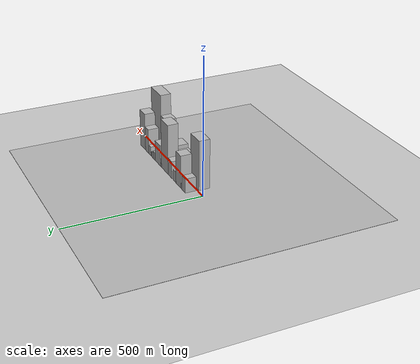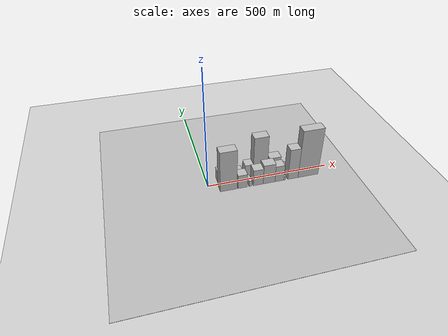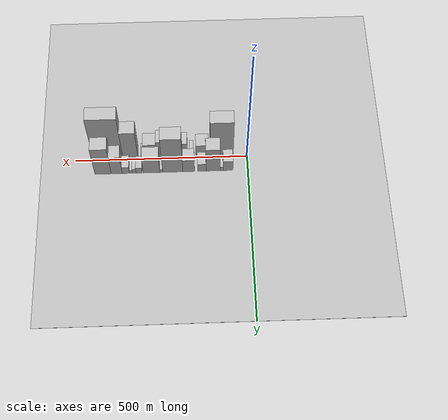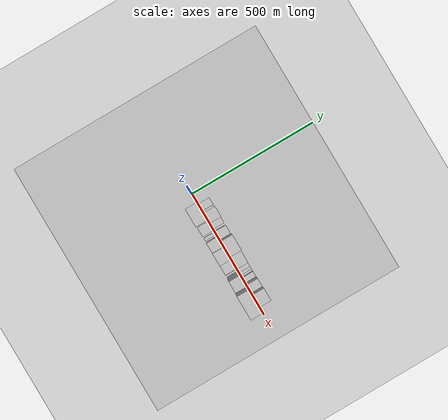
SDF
<?xml version="1.0" encoding="utf-8"?>

<sdf version="1.6">

   <world name="default">

      <gui fullscreen="0">

         <camera name="user_camera">

            <pose>-15 0 4.57585 0 0 0</pose>

            <view_controller>orbit</view_controller>

         </camera>

      </gui>

      <scene>

         <sky>

           <clouds>

             <speed>12</speed>

           </clouds>

         </sky>

         <ambient>0.4 0.4 0.4 1</ambient>

         <background>0.7 0.7 0.7 1</background>

         <shadows>1</shadows>

      </scene>

      <gravity>0 0 -9.8066</gravity>

      <magnetic_field>6e-06 2.3e-05 -4.2e-05</magnetic_field>

      <physics default="0" name="default_physics" type="ode">

         <ode>

            <solver>

               <type>quick</type>

               <iters>10</iters>

               <sor>1.0</sor>

               <use_dynamic_moi_rescaling>0</use_dynamic_moi_rescaling>

            </solver>

            <constraints>

               <cfm>0</cfm>

               <erp>0.2</erp>

               <contact_max_correcting_vel>100</contact_max_correcting_vel>

               <contact_surface_layer>0.001</contact_surface_layer>

            </constraints>

         </ode>

         <max_step_size>0.004</max_step_size>

         <real_time_factor>1</real_time_factor>

         <real_time_update_rate>250</real_time_update_rate>

      </physics>

      <light name="sun" type="directional">

         <cast_shadows>1</cast_shadows>

         <pose>0 0 10 0 0 0</pose>

         <diffuse>0.8 0.8 0.8 1</diffuse>

         <specular>0.2 0.2 0.2 1</specular>

         <attenuation>

            <range>1000</range>

            <constant>0.9</constant>

            <linear>0.01</linear>

            <quadratic>0.001</quadratic>

         </attenuation>

         <direction>-0.5 0.1 -0.9</direction>

      </light>

      <include>

         <name>ground_plane_1</name>

         <uri>model://HANNAS_ground_plane</uri>

         <pose>0 0 0  0 0 0</pose>

      </include>

      <include>

         <name>ground_plane_2</name>

         <uri>model://HANNAS_ground_plane</uri>

         <pose>100 0 0  0 0 0</pose>

      </include>

      <model name="building_1">

         <static>1</static>

         <pose frame="">57.1358 24.5000 0 0.000000 0.000000 1.570796</pose>

         <link name="link">

            <pose frame="">0 0 27.00 0 0 0</pose>

            <collision name="collision">

               <geometry>

                  <box>

                     <size>40.0000 28.2716 54.0000</size>

                  </box>

               </geometry>

               <max_contacts>10</max_contacts>

               <surface>

                  <contact>

                     <ode/>

                  </contact>

                  <bounce/>

                  <friction>

                     <torsional>

                        <ode/>

                     </torsional>

                     <ode/>

                  </friction>

               </surface>

            </collision>

            <visual name="visual">

               <cast_shadows>0</cast_shadows>

               <geometry>

                  <box>

                     <size>40.0000 28.2716 54.0000</size>

                  </box>

               </geometry>

               <material>

                  <script>

                     <uri>model://HANNAS_wall/materials/scripts</uri>

                     <uri>model://HANNAS_wall/materials/textures</uri>

                     <name>vrc/HANNAS_wall</name>

                  </script>

               </material>

            </visual>

            <self_collide>0</self_collide>

            <enable_wind>0</enable_wind>

            <kinematic>0</kinematic>

         </link>

      </model>

      <model name="building_2">

         <static>1</static>

         <pose frame="">75.6466 24.5000 0 0.000000 0.000000 1.570796</pose>

         <link name="link">

            <pose frame="">0 0 10.50 0 0 0</pose>

            <collision name="collision">

               <geometry>

                  <box>

                     <size>40.0000 8.7501 21.0000</size>

                  </box>

               </geometry>

               <max_contacts>10</max_contacts>

               <surface>

                  <contact>

                     <ode/>

                  </contact>

                  <bounce/>

                  <friction>

                     <torsional>

                        <ode/>

                     </torsional>

                     <ode/>

                  </friction>

               </surface>

            </collision>

            <visual name="visual">

               <cast_shadows>0</cast_shadows>

               <geometry>

                  <box>

                     <size>40.0000 8.7501 21.0000</size>

                  </box>

               </geometry>

               <material>

                  <script>

                     <uri>model://HANNAS_wall/materials/scripts</uri>

                     <uri>model://HANNAS_wall/materials/textures</uri>

                     <name>vrc/HANNAS_wall</name>

                  </script>

               </material>

            </visual>

            <self_collide>0</self_collide>

            <enable_wind>0</enable_wind>

            <kinematic>0</kinematic>

         </link>

      </model>

      <model name="building_3">

         <static>1</static>

         <pose frame="">100.4074 24.5000 0 0.000000 0.000000 1.570796</pose>

         <link name="link">

            <pose frame="">0 0 61.50 0 0 0</pose>

            <collision name="collision">

               <geometry>

                  <box>

                     <size>40.0000 40.7714 123.0000</size>

                  </box>

               </geometry>

               <max_contacts>10</max_contacts>

               <surface>

                  <contact>

                     <ode/>

                  </contact>

                  <bounce/>

                  <friction>

                     <torsional>

                        <ode/>

                     </torsional>

                     <ode/>

                  </friction>

               </surface>

            </collision>

            <visual name="visual">

               <cast_shadows>0</cast_shadows>

               <geometry>

                  <box>

                     <size>40.0000 40.7714 123.0000</size>

                  </box>

               </geometry>

               <material>

                  <script>

                     <uri>model://HANNAS_wall/materials/scripts</uri>

                     <uri>model://HANNAS_wall/materials/textures</uri>

                     <name>vrc/HANNAS_wall</name>

                  </script>

               </material>

            </visual>

            <self_collide>0</self_collide>

            <enable_wind>0</enable_wind>

            <kinematic>0</kinematic>

         </link>

      </model>

      <model name="building_4">

         <static>1</static>

         <pose frame="">133.0607 24.5000 0 0.000000 0.000000 1.570796</pose>

         <link name="link">

            <pose frame="">0 0 21.00 0 0 0</pose>

            <collision name="collision">

               <geometry>

                  <box>

                     <size>40.0000 24.5352 42.0000</size>

                  </box>

               </geometry>

               <max_contacts>10</max_contacts>

               <surface>

                  <contact>

                     <ode/>

                  </contact>

                  <bounce/>

                  <friction>

                     <torsional>

                        <ode/>

                     </torsional>

                     <ode/>

                  </friction>

               </surface>

            </collision>

            <visual name="visual">

               <cast_shadows>0</cast_shadows>

               <geometry>

                  <box>

                     <size>40.0000 24.5352 42.0000</size>

                  </box>

               </geometry>

               <material>

                  <script>

                     <uri>model://HANNAS_wall/materials/scripts</uri>

                     <uri>model://HANNAS_wall/materials/textures</uri>

                     <name>vrc/HANNAS_wall</name>

                  </script>

               </material>

            </visual>

            <self_collide>0</self_collide>

            <enable_wind>0</enable_wind>

            <kinematic>0</kinematic>

         </link>

      </model>

      <model name="building_5">

         <static>1</static>

         <pose frame="">171.2471 24.5000 0 0.000000 0.000000 1.570796</pose>

         <link name="link">

            <pose frame="">0 0 33.00 0 0 0</pose>

            <collision name="collision">

               <geometry>

                  <box>

                     <size>40.0000 33.8376 66.0000</size>

                  </box>

               </geometry>

               <max_contacts>10</max_contacts>

               <surface>

                  <contact>

                     <ode/>

                  </contact>

                  <bounce/>

                  <friction>

                     <torsional>

                        <ode/>

                     </torsional>

                     <ode/>

                  </friction>

               </surface>

            </collision>

            <visual name="visual">

               <cast_shadows>0</cast_shadows>

               <geometry>

                  <box>

                     <size>40.0000 33.8376 66.0000</size>

                  </box>

               </geometry>

               <material>

                  <script>

                     <uri>model://HANNAS_wall/materials/scripts</uri>

                     <uri>model://HANNAS_wall/materials/textures</uri>

                     <name>vrc/HANNAS_wall</name>

                  </script>

               </material>

            </visual>

            <self_collide>0</self_collide>

            <enable_wind>0</enable_wind>

            <kinematic>0</kinematic>

         </link>

      </model>

      <model name="building_6">

         <static>1</static>

         <pose frame="">217.4419 24.5000 0 0.000000 0.000000 1.570796</pose>

         <link name="link">

            <pose frame="">0 0 94.50 0 0 0</pose>

            <collision name="collision">

               <geometry>

                  <box>

                     <size>40.0000 58.5521 189.0000</size>

                  </box>

               </geometry>

               <max_contacts>10</max_contacts>

               <surface>

                  <contact>

                     <ode/>

                  </contact>

                  <bounce/>

                  <friction>

                     <torsional>

                        <ode/>

                     </torsional>

                     <ode/>

                  </friction>

               </surface>

            </collision>

            <visual name="visual">

               <cast_shadows>0</cast_shadows>

               <geometry>

                  <box>

                     <size>40.0000 58.5521 189.0000</size>

                  </box>

               </geometry>

               <material>

                  <script>

                     <uri>model://HANNAS_wall/materials/scripts</uri>

                     <uri>model://HANNAS_wall/materials/textures</uri>

                     <name>vrc/HANNAS_wall</name>

                  </script>

               </material>

            </visual>

            <self_collide>0</self_collide>

            <enable_wind>0</enable_wind>

            <kinematic>0</kinematic>

         </link>

      </model>

      <model name="building_7">

         <static>1</static>

         <pose frame="">250.9183 24.5000 0 0.000000 0.000000 1.570796</pose>

         <link name="link">

            <pose frame="">0 0 9.00 0 0 0</pose>

            <collision name="collision">

               <geometry>

                  <box>

                     <size>40.0000 8.4008 18.0000</size>

                  </box>

               </geometry>

               <max_contacts>10</max_contacts>

               <surface>

                  <contact>

                     <ode/>

                  </contact>

                  <bounce/>

                  <friction>

                     <torsional>

                        <ode/>

                     </torsional>

                     <ode/>

                  </friction>

               </surface>

            </collision>

            <visual name="visual">

               <cast_shadows>0</cast_shadows>

               <geometry>

                  <box>

                     <size>40.0000 8.4008 18.0000</size>

                  </box>

               </geometry>

               <material>

                  <script>

                     <uri>model://HANNAS_wall/materials/scripts</uri>

                     <uri>model://HANNAS_wall/materials/textures</uri>

                     <name>vrc/HANNAS_wall</name>

                  </script>

               </material>

            </visual>

            <self_collide>0</self_collide>

            <enable_wind>0</enable_wind>

            <kinematic>0</kinematic>

         </link>

      </model>

      <model name="building_8">

         <static>1</static>

         <pose frame="">279.1200 24.5000 0 0.000000 0.000000 1.570796</pose>

         <link name="link">

            <pose frame="">0 0 40.50 0 0 0</pose>

            <collision name="collision">

               <geometry>

                  <box>

                     <size>40.0000 48.0025 81.0000</size>

                  </box>

               </geometry>

               <max_contacts>10</max_contacts>

               <surface>

                  <contact>

                     <ode/>

                  </contact>

                  <bounce/>

                  <friction>

                     <torsional>

                        <ode/>

                     </torsional>

                     <ode/>

                  </friction>

               </surface>

            </collision>

            <visual name="visual">

               <cast_shadows>0</cast_shadows>

               <geometry>

                  <box>

                     <size>40.0000 48.0025 81.0000</size>

                  </box>

               </geometry>

               <material>

                  <script>

                     <uri>model://HANNAS_wall/materials/scripts</uri>

                     <uri>model://HANNAS_wall/materials/textures</uri>

                     <name>vrc/HANNAS_wall</name>

                  </script>

               </material>

            </visual>

            <self_collide>0</self_collide>

            <enable_wind>0</enable_wind>

            <kinematic>0</kinematic>

         </link>

      </model>

      <model name="building_9">

         <static>1</static>

         <pose frame="">314.8700 24.5000 0 0.000000 0.000000 1.570796</pose>

         <link name="link">

            <pose frame="">0 0 15.00 0 0 0</pose>

            <collision name="collision">

               <geometry>

                  <box>

                     <size>40.0000 17.4976 30.0000</size>

                  </box>

               </geometry>

               <max_contacts>10</max_contacts>

               <surface>

                  <contact>

                     <ode/>

                  </contact>

                  <bounce/>

                  <friction>

                     <torsional>

                        <ode/>

                     </torsional>

                     <ode/>

                  </friction>

               </surface>

            </collision>

            <visual name="visual">

               <cast_shadows>0</cast_shadows>

               <geometry>

                  <box>

                     <size>40.0000 17.4976 30.0000</size>

                  </box>

               </geometry>

               <material>

                  <script>

                     <uri>model://HANNAS_wall/materials/scripts</uri>

                     <uri>model://HANNAS_wall/materials/textures</uri>

                     <name>vrc/HANNAS_wall</name>

                  </script>

               </material>

            </visual>

            <self_collide>0</self_collide>

            <enable_wind>0</enable_wind>

            <kinematic>0</kinematic>

         </link>

      </model>

      <model name="building_10">

         <static>1</static>

         <pose frame="">329.1398 24.5000 0 0.000000 0.000000 1.570796</pose>

         <link name="link">

            <pose frame="">0 0 12.00 0 0 0</pose>

            <collision name="collision">

               <geometry>

                  <box>

                     <size>40.0000 11.0420 24.0000</size>

                  </box>

               </geometry>

               <max_contacts>10</max_contacts>

               <surface>

                  <contact>

                     <ode/>

                  </contact>

                  <bounce/>

                  <friction>

                     <torsional>

                        <ode/>

                     </torsional>

                     <ode/>

                  </friction>

               </surface>

            </collision>

            <visual name="visual">

               <cast_shadows>0</cast_shadows>

               <geometry>

                  <box>

                     <size>40.0000 11.0420 24.0000</size>

                  </box>

               </geometry>

               <material>

                  <script>

                     <uri>model://HANNAS_wall/materials/scripts</uri>

                     <uri>model://HANNAS_wall/materials/textures</uri>

                     <name>vrc/HANNAS_wall</name>

                  </script>

               </material>

            </visual>

            <self_collide>0</self_collide>

            <enable_wind>0</enable_wind>

            <kinematic>0</kinematic>

         </link>

      </model>

      <model name="building_11">

         <static>1</static>

         <pose frame="">338.8888 24.5000 0 0.000000 0.000000 1.570796</pose>

         <link name="link">

            <pose frame="">0 0 9.00 0 0 0</pose>

            <collision name="collision">

               <geometry>

                  <box>

                     <size>40.0000 8.4560 18.0000</size>

                  </box>

               </geometry>

               <max_contacts>10</max_contacts>

               <surface>

                  <contact>

                     <ode/>

                  </contact>

                  <bounce/>

                  <friction>

                     <torsional>

                        <ode/>

                     </torsional>

                     <ode/>

                  </friction>

               </surface>

            </collision>

            <visual name="visual">

               <cast_shadows>0</cast_shadows>

               <geometry>

                  <box>

                     <size>40.0000 8.4560 18.0000</size>

                  </box>

               </geometry>

               <material>

                  <script>

                     <uri>model://HANNAS_wall/materials/scripts</uri>

                     <uri>model://HANNAS_wall/materials/textures</uri>

                     <name>vrc/HANNAS_wall</name>

                  </script>

               </material>

            </visual>

            <self_collide>0</self_collide>

            <enable_wind>0</enable_wind>

            <kinematic>0</kinematic>

         </link>

      </model>

      <model name="building_12">

         <static>1</static>

         <pose frame="">353.6256 24.5000 0 0.000000 0.000000 1.570796</pose>

         <link name="link">

            <pose frame="">0 0 18.00 0 0 0</pose>

            <collision name="collision">

               <geometry>

                  <box>

                     <size>40.0000 21.0176 36.0000</size>

                  </box>

               </geometry>

               <max_contacts>10</max_contacts>

               <surface>

                  <contact>

                     <ode/>

                  </contact>

                  <bounce/>

                  <friction>

                     <torsional>

                        <ode/>

                     </torsional>

                     <ode/>

                  </friction>

               </surface>

            </collision>

            <visual name="visual">

               <cast_shadows>0</cast_shadows>

               <geometry>

                  <box>

                     <size>40.0000 21.0176 36.0000</size>

                  </box>

               </geometry>

               <material>

                  <script>

                     <uri>model://HANNAS_wall/materials/scripts</uri>

                     <uri>model://HANNAS_wall/materials/textures</uri>

                     <name>vrc/HANNAS_wall</name>

                  </script>

               </material>

            </visual>

            <self_collide>0</self_collide>

            <enable_wind>0</enable_wind>

            <kinematic>0</kinematic>

         </link>

      </model>

      <model name="building_13">

         <static>1</static>

         <pose frame="">379.8523 24.5000 0 0.000000 0.000000 1.570796</pose>

         <link name="link">

            <pose frame="">0 0 48.00 0 0 0</pose>

            <collision name="collision">

               <geometry>

                  <box>

                     <size>40.0000 31.4357 96.0000</size>

                  </box>

               </geometry>

               <max_contacts>10</max_contacts>

               <surface>

                  <contact>

                     <ode/>

                  </contact>

                  <bounce/>

                  <friction>

                     <torsional>

                        <ode/>

                     </torsional>

                     <ode/>

                  </friction>

               </surface>

            </collision>

            <visual name="visual">

               <cast_shadows>0</cast_shadows>

               <geometry>

                  <box>

                     <size>40.0000 31.4357 96.0000</size>

                  </box>

               </geometry>

               <material>

                  <script>

                     <uri>model://HANNAS_wall/materials/scripts</uri>

                     <uri>model://HANNAS_wall/materials/textures</uri>

                     <name>vrc/HANNAS_wall</name>

                  </script>

               </material>

            </visual>

            <self_collide>0</self_collide>

            <enable_wind>0</enable_wind>

            <kinematic>0</kinematic>

         </link>

      </model>

      <model name="building_14">

         <static>1</static>

         <pose frame="">419.0735 24.5000 0 0.000000 0.000000 1.570796</pose>

         <link name="link">

            <pose frame="">0 0 72.00 0 0 0</pose>

            <collision name="collision">

               <geometry>

                  <box>

                     <size>40.0000 47.0068 144.0000</size>

                  </box>

               </geometry>

               <max_contacts>10</max_contacts>

               <surface>

                  <contact>

                     <ode/>

                  </contact>

                  <bounce/>

                  <friction>

                     <torsional>

                        <ode/>

                     </torsional>

                     <ode/>

                  </friction>

               </surface>

            </collision>

            <visual name="visual">

               <cast_shadows>0</cast_shadows>

               <geometry>

                  <box>

                     <size>40.0000 47.0068 144.0000</size>

                  </box>

               </geometry>

               <material>

                  <script>

                     <uri>model://HANNAS_wall/materials/scripts</uri>

                     <uri>model://HANNAS_wall/materials/textures</uri>

                     <name>vrc/HANNAS_wall</name>

                  </script>

               </material>

            </visual>

            <self_collide>0</self_collide>

            <enable_wind>0</enable_wind>

            <kinematic>0</kinematic>

         </link>

      </model>

      <model name="building_15">

         <static>1</static>

         <pose frame="">73.7145 -24.5000 0 0.000000 0.000000 1.570796</pose>

         <link name="link">

            <pose frame="">0 0 93.00 0 0 0</pose>

            <collision name="collision">

               <geometry>

                  <box>

                     <size>40.0000 67.4290 186.0000</size>

                  </box>

               </geometry>

               <max_contacts>10</max_contacts>

               <surface>

                  <contact>

                     <ode/>

                  </contact>

                  <bounce/>

                  <friction>

                     <torsional>

                        <ode/>

                     </torsional>

                     <ode/>

                  </friction>

               </surface>

            </collision>

            <visual name="visual">

               <cast_shadows>0</cast_shadows>

               <geometry>

                  <box>

                     <size>40.0000 67.4290 186.0000</size>

                  </box>

               </geometry>

               <material>

                  <script>

                     <uri>model://HANNAS_wall/materials/scripts</uri>

                     <uri>model://HANNAS_wall/materials/textures</uri>

                     <name>vrc/HANNAS_wall</name>

                  </script>

               </material>

            </visual>

            <self_collide>0</self_collide>

            <enable_wind>0</enable_wind>

            <kinematic>0</kinematic>

         </link>

      </model>

      <model name="building_16">

         <static>1</static>

         <pose frame="">130.2080 -24.5000 0 0.000000 0.000000 1.570796</pose>

         <link name="link">

            <pose frame="">0 0 31.50 0 0 0</pose>

            <collision name="collision">

               <geometry>

                  <box>

                     <size>40.0000 37.5580 63.0000</size>

                  </box>

               </geometry>

               <max_contacts>10</max_contacts>

               <surface>

                  <contact>

                     <ode/>

                  </contact>

                  <bounce/>

                  <friction>

                     <torsional>

                        <ode/>

                     </torsional>

                     <ode/>

                  </friction>

               </surface>

            </collision>

            <visual name="visual">

               <cast_shadows>0</cast_shadows>

               <geometry>

                  <box>

                     <size>40.0000 37.5580 63.0000</size>

                  </box>

               </geometry>

               <material>

                  <script>

                     <uri>model://HANNAS_wall/materials/scripts</uri>

                     <uri>model://HANNAS_wall/materials/textures</uri>

                     <name>vrc/HANNAS_wall</name>

                  </script>

               </material>

            </visual>

            <self_collide>0</self_collide>

            <enable_wind>0</enable_wind>

            <kinematic>0</kinematic>

         </link>

      </model>

      <model name="building_17">

         <static>1</static>

         <pose frame="">161.7956 -24.5000 0 0.000000 0.000000 1.570796</pose>

         <link name="link">

            <pose frame="">0 0 13.50 0 0 0</pose>

            <collision name="collision">

               <geometry>

                  <box>

                     <size>40.0000 11.6174 27.0000</size>

                  </box>

               </geometry>

               <max_contacts>10</max_contacts>

               <surface>

                  <contact>

                     <ode/>

                  </contact>

                  <bounce/>

                  <friction>

                     <torsional>

                        <ode/>

                     </torsional>

                     <ode/>

                  </friction>

               </surface>

            </collision>

            <visual name="visual">

               <cast_shadows>0</cast_shadows>

               <geometry>

                  <box>

                     <size>40.0000 11.6174 27.0000</size>

                  </box>

               </geometry>

               <material>

                  <script>

                     <uri>model://HANNAS_wall/materials/scripts</uri>

                     <uri>model://HANNAS_wall/materials/textures</uri>

                     <name>vrc/HANNAS_wall</name>

                  </script>

               </material>

            </visual>

            <self_collide>0</self_collide>

            <enable_wind>0</enable_wind>

            <kinematic>0</kinematic>

         </link>

      </model>

      <model name="building_18">

         <static>1</static>

         <pose frame="">193.9134 -24.5000 0 0.000000 0.000000 1.570796</pose>

         <link name="link">

            <pose frame="">0 0 37.50 0 0 0</pose>

            <collision name="collision">

               <geometry>

                  <box>

                     <size>40.0000 40.6183 75.0000</size>

                  </box>

               </geometry>

               <max_contacts>10</max_contacts>

               <surface>

                  <contact>

                     <ode/>

                  </contact>

                  <bounce/>

                  <friction>

                     <torsional>

                        <ode/>

                     </torsional>

                     <ode/>

                  </friction>

               </surface>

            </collision>

            <visual name="visual">

               <cast_shadows>0</cast_shadows>

               <geometry>

                  <box>

                     <size>40.0000 40.6183 75.0000</size>

                  </box>

               </geometry>

               <material>

                  <script>

                     <uri>model://HANNAS_wall/materials/scripts</uri>

                     <uri>model://HANNAS_wall/materials/textures</uri>

                     <name>vrc/HANNAS_wall</name>

                  </script>

               </material>

            </visual>

            <self_collide>0</self_collide>

            <enable_wind>0</enable_wind>

            <kinematic>0</kinematic>

         </link>

      </model>

      <model name="building_19">

         <static>1</static>

         <pose frame="">238.8844 -24.5000 0 0.000000 0.000000 1.570796</pose>

         <link name="link">

            <pose frame="">0 0 45.00 0 0 0</pose>

            <collision name="collision">

               <geometry>

                  <box>

                     <size>40.0000 49.3237 90.0000</size>

                  </box>

               </geometry>

               <max_contacts>10</max_contacts>

               <surface>

                  <contact>

                     <ode/>

                  </contact>

                  <bounce/>

                  <friction>

                     <torsional>

                        <ode/>

                     </torsional>

                     <ode/>

                  </friction>

               </surface>

            </collision>

            <visual name="visual">

               <cast_shadows>0</cast_shadows>

               <geometry>

                  <box>

                     <size>40.0000 49.3237 90.0000</size>

                  </box>

               </geometry>

               <material>

                  <script>

                     <uri>model://HANNAS_wall/materials/scripts</uri>

                     <uri>model://HANNAS_wall/materials/textures</uri>

                     <name>vrc/HANNAS_wall</name>

                  </script>

               </material>

            </visual>

            <self_collide>0</self_collide>

            <enable_wind>0</enable_wind>

            <kinematic>0</kinematic>

         </link>

      </model>

      <model name="building_20">

         <static>1</static>

         <pose frame="">282.4290 -24.5000 0 0.000000 0.000000 1.570796</pose>

         <link name="link">

            <pose frame="">0 0 37.50 0 0 0</pose>

            <collision name="collision">

               <geometry>

                  <box>

                     <size>40.0000 37.7654 75.0000</size>

                  </box>

               </geometry>

               <max_contacts>10</max_contacts>

               <surface>

                  <contact>

                     <ode/>

                  </contact>

                  <bounce/>

                  <friction>

                     <torsional>

                        <ode/>

                     </torsional>

                     <ode/>

                  </friction>

               </surface>

            </collision>

            <visual name="visual">

               <cast_shadows>0</cast_shadows>

               <geometry>

                  <box>

                     <size>40.0000 37.7654 75.0000</size>

                  </box>

               </geometry>

               <material>

                  <script>

                     <uri>model://HANNAS_wall/materials/scripts</uri>

                     <uri>model://HANNAS_wall/materials/textures</uri>

                     <name>vrc/HANNAS_wall</name>

                  </script>

               </material>

            </visual>

            <self_collide>0</self_collide>

            <enable_wind>0</enable_wind>

            <kinematic>0</kinematic>

         </link>

      </model>

      <model name="building_21">

         <static>1</static>

         <pose frame="">305.3444 -24.5000 0 0.000000 0.000000 1.570796</pose>

         <link name="link">

            <pose frame="">0 0 9.00 0 0 0</pose>

            <collision name="collision">

               <geometry>

                  <box>

                     <size>40.0000 8.0654 18.0000</size>

                  </box>

               </geometry>

               <max_contacts>10</max_contacts>

               <surface>

                  <contact>

                     <ode/>

                  </contact>

                  <bounce/>

                  <friction>

                     <torsional>

                        <ode/>

                     </torsional>

                     <ode/>

                  </friction>

               </surface>

            </collision>

            <visual name="visual">

               <cast_shadows>0</cast_shadows>

               <geometry>

                  <box>

                     <size>40.0000 8.0654 18.0000</size>

                  </box>

               </geometry>

               <material>

                  <script>

                     <uri>model://HANNAS_wall/materials/scripts</uri>

                     <uri>model://HANNAS_wall/materials/textures</uri>

                     <name>vrc/HANNAS_wall</name>

                  </script>

               </material>

            </visual>

            <self_collide>0</self_collide>

            <enable_wind>0</enable_wind>

            <kinematic>0</kinematic>

         </link>

      </model>

      <model name="building_22">

         <static>1</static>

         <pose frame="">340.2883 -24.5000 0 0.000000 0.000000 1.570796</pose>

         <link name="link">

            <pose frame="">0 0 72.00 0 0 0</pose>

            <collision name="collision">

               <geometry>

                  <box>

                     <size>40.0000 43.8223 144.0000</size>

                  </box>

               </geometry>

               <max_contacts>10</max_contacts>

               <surface>

                  <contact>

                     <ode/>

                  </contact>

                  <bounce/>

                  <friction>

                     <torsional>

                        <ode/>

                     </torsional>

                     <ode/>

                  </friction>

               </surface>

            </collision>

            <visual name="visual">

               <cast_shadows>0</cast_shadows>

               <geometry>

                  <box>

                     <size>40.0000 43.8223 144.0000</size>

                  </box>

               </geometry>

               <material>

                  <script>

                     <uri>model://HANNAS_wall/materials/scripts</uri>

                     <uri>model://HANNAS_wall/materials/textures</uri>

                     <name>vrc/HANNAS_wall</name>

                  </script>

               </material>

            </visual>

            <self_collide>0</self_collide>

            <enable_wind>0</enable_wind>

            <kinematic>0</kinematic>

         </link>

      </model>

      <model name="building_23">

         <static>1</static>

         <pose frame="">405.4164 -24.5000 0 0.000000 0.000000 1.570796</pose>

         <link name="link">

            <pose frame="">0 0 111.00 0 0 0</pose>

            <collision name="collision">

               <geometry>

                  <box>

                     <size>40.0000 86.4339 222.0000</size>

                  </box>

               </geometry>

               <max_contacts>10</max_contacts>

               <surface>

                  <contact>

                     <ode/>

                  </contact>

                  <bounce/>

                  <friction>

                     <torsional>

                        <ode/>

                     </torsional>

                     <ode/>

                  </friction>

               </surface>

            </collision>

            <visual name="visual">

               <cast_shadows>0</cast_shadows>

               <geometry>

                  <box>

                     <size>40.0000 86.4339 222.0000</size>

                  </box>

               </geometry>

               <material>

                  <script>

                     <uri>model://HANNAS_wall/materials/scripts</uri>

                     <uri>model://HANNAS_wall/materials/textures</uri>

                     <name>vrc/HANNAS_wall</name>

                  </script>

               </material>

            </visual>

            <self_collide>0</self_collide>

            <enable_wind>0</enable_wind>

            <kinematic>0</kinematic>

         </link>

      </model>

   </world>

</sdf>

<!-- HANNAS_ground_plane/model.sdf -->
<sdf version="1.4">
<model name="HANNAS_ground_plane">
  <static>true</static>
    <link name="link">
      <collision name="collision">
        <geometry>
          <plane>
            <normal>0 0 1</normal>
            <size>1000 1000</size>
          </plane>
        </geometry>
        <surface>
          <friction>
            <ode>
              <mu>100</mu>
              <mu2>50</mu2>
            </ode>
          </friction>
        </surface>
      </collision>
      <visual name="visual">
        <cast_shadows>false</cast_shadows>
        <geometry>
          <plane>
            <normal>0 0 1</normal>
            <size>1000 1000</size>
          </plane>
        </geometry>
        <material>
          <script>
            <uri>model://HANNAS_ground_plane/materials/scripts/HANNAS_ground_plane.material</uri>
	    <uri>model://HANNAS_ground_plane/materials/textures</uri>
            <name>HANNASGroundPlane/Image</name>
          </script>
        </material>
      </visual>
    </link>
  </model>
</sdf>
